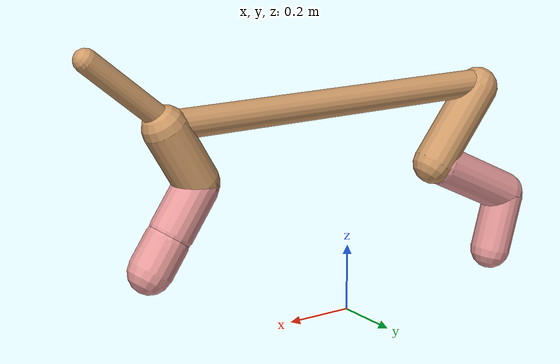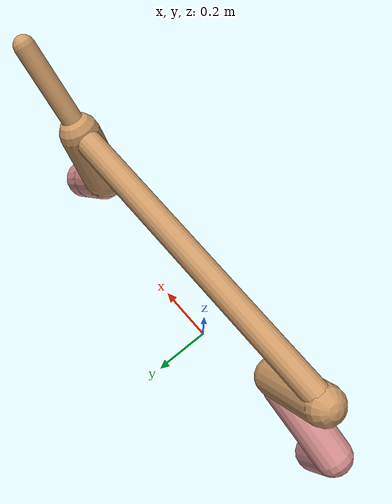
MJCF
<mujoco model="cheetah">
  <compiler angle="radian" coordinate="local" inertiafromgeom="true" settotalmass="14" />
  <default>
    <joint armature=".1" damping=".01" limited="true" solimplimit="0 .8 .03" solreflimit=".02 1" stiffness="8" />
    <geom conaffinity="0" condim="3" contype="1" friction="0.8 .1 .1" rgba="0.8 0.6 .4 1" solimp="0.0 0.8 0.01" solref="0.02 1" />
    <motor ctrllimited="true" ctrlrange="-1 1" />
  </default>
  <size nstack="300000" nuser_geom="1" />
  <option gravity="0 0 -9.81" timestep="0.01" />
  <worldbody>
    <body name="torso" pos="0.0 0.0 0.6338791522417174">
      <joint armature="0" axis="1 0 0" damping="0" limited="false" name="ignorex" pos="0 0 0" stiffness="0" type="slide" />
      <joint armature="0" axis="0 0 1" damping="0" limited="false" name="ignorez" pos="0 0 0" stiffness="0" type="slide" />
      <joint armature="0" axis="0 1 0" damping="0" limited="false" name="ignorey" pos="0 0 0" stiffness="0" type="hinge" />
      <geom fromto="-0.5 0.0 0.0 0.5964670456122376 0.0 0.0" name="torso" size="0.04127503232360066" type="capsule" />
      <geom axisangle="0 1 0 .87" name="head" pos="0.6964670456122376 0.0 0.1" size="0.03294449328765093 0.15" type="capsule" />

      <body name="bthigh" pos="-.5 0 0">
        <joint axis="0 1 0" damping="6" name="bthigh" pos="0 0 0" range="-.52 1.05" stiffness="240" type="hinge" />
        <geom axisangle="0 1 0 -3.8" name="bthigh" pos="0.0950460882226816 0.0 -0.12355991468948607" size="0.06245915099339466 0.13687498057207542" type="capsule" />
        <body name="bshin" pos="0.15009217644536318 0.0 -0.23711982937897214">
          <joint axis="0 1 0" damping="4.5" name="bshin" pos="0 0 0" range="-.785 .785" stiffness="180" type="hinge" />
          <geom axisangle="0 1 0 -2.03" name="bshin" pos="-0.13248216727199488 0.0 -0.06624108363599744" rgba="0.9 0.6 0.6 1" size="0.06245915099339466 0.1415948074883539" type="capsule" />
          <body name="bfoot" pos="-0.26496433454398977 0.0 -0.13248216727199488">
            <joint axis="0 1 0" damping="3" name="bfoot" pos="0 0 0" range="-.4 .785" stiffness="120" type="hinge" />
            <geom axisangle="0 1 0 -.27" name="bfoot" pos="0.028443685927752434 0.0 -0.09196791783306621" rgba="0.9 0.6 0.6 1" size="0.06245915099339466 0.0887327460260351" type="capsule" />
            <inertial mass="10" />
          </body>
        </body>
      </body>
      <body name="fthigh" pos="0.5964670456122376 0.0 0.0">
        <joint axis="0 1 0" damping="4.5" name="fthigh" pos="0 0 0" range="-1.5 0.8" stiffness="180" type="hinge" />
        <geom axisangle="0 1 0 .52" name="fthigh" pos="-0.04989554608158897 0.0 -0.0855352218541525" size="0.06344503199665609 0.0931" type="capsule" />
        <body name="fshin" pos="-0.09979109216317794 0.0 -0.171070443708305">
          <joint axis="0 1 0" damping="3" name="fshin" pos="0 0 0" range="-1.2 1.1" stiffness="120" type="hinge" />
          <geom axisangle="0 1 0 -.6" name="fshin" pos="0.046381400387749405 0.0 -0.06422040053688378" rgba="0.9 0.6 0.6 1" size="0.06344503199665609 0.07419999999999999" type="capsule" />
          <body name="ffoot" pos="0.09276280077549881 0.0 -0.12844080107376757">
            <joint axis="0 1 0" damping="1.5" name="ffoot" pos="0 0 0" range="-3.1 -0.3" stiffness="60" type="hinge" />
            <geom axisangle="0 1 0 -.6" name="ffoot" pos="0.033644090582416526 0.0 -0.05233525201709238" rgba="0.9 0.6 0.6 1" size="0.06344503199665609 0.049" type="capsule" />
            <inertial mass="10" />
          </body>
        </body>
      </body>
    </body>
  </worldbody>
  <actuator>
    <motor gear="120" joint="bthigh" name="bthigh" />
    <motor gear="90" joint="bshin" name="bshin" />
    <motor gear="60" joint="bfoot" name="bfoot" />
    <motor gear="120" joint="fthigh" name="fthigh" />
    <motor gear="60" joint="fshin" name="fshin" />
    <motor gear="30" joint="ffoot" name="ffoot" />
  </actuator>
</mujoco>
